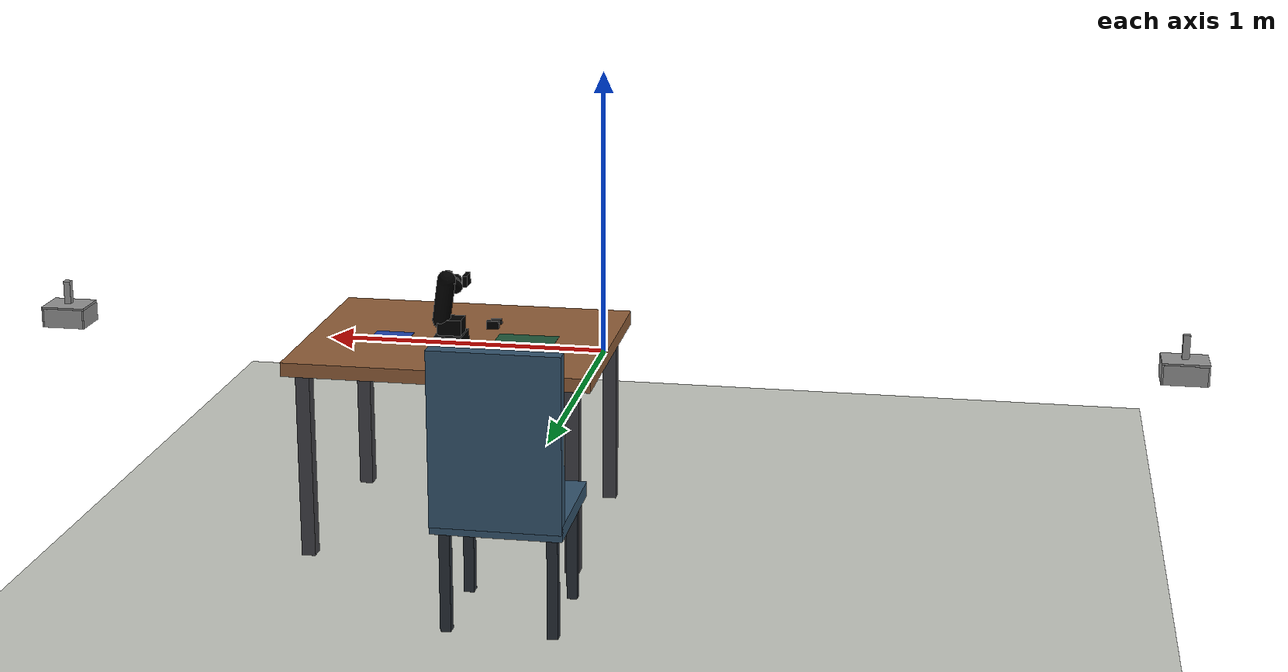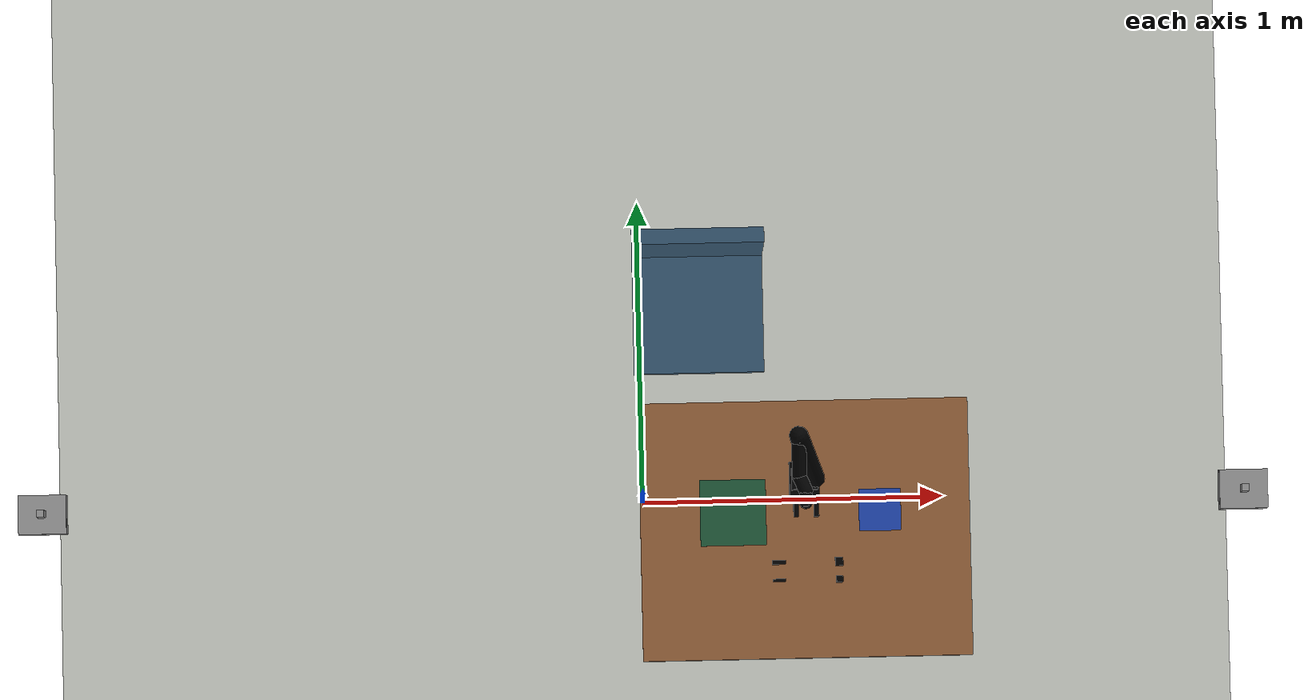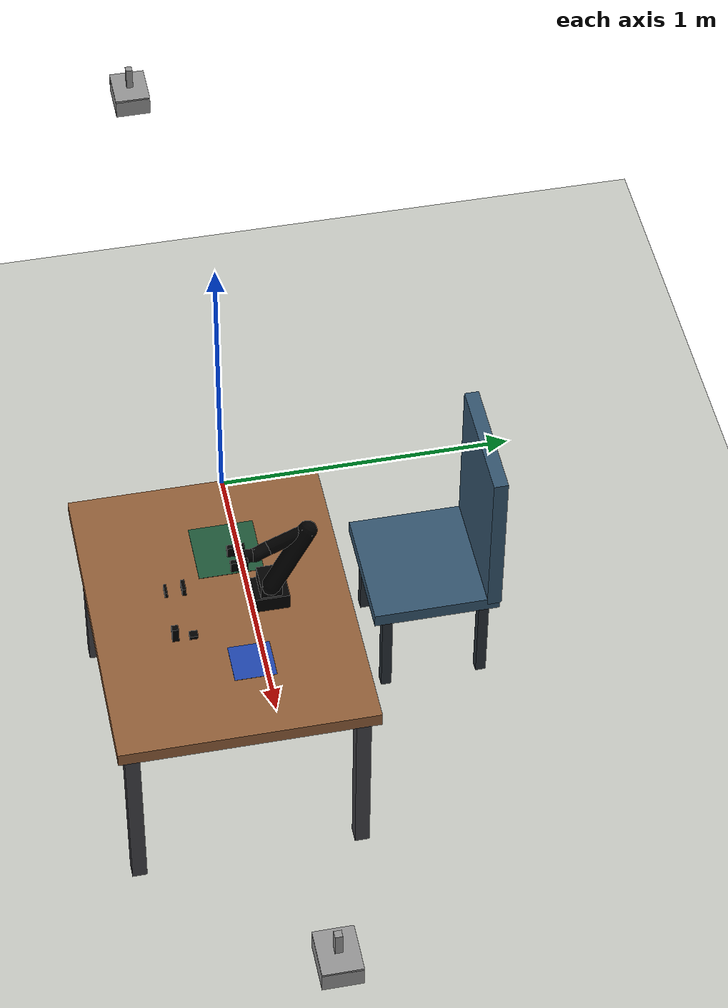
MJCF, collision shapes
<mujoco model="NexArm memory occlusion MVP">
  <include file="../../assets/robot/robot.xml"/>
  <compiler meshdir="../../assets/robot/meshes"/>
  <asset>
    <texture name="butter_tex" type="2d" file="../../assets/hope-dataset/meshes/eval/Butter.png"/>
    <texture name="popcorn_tex" type="2d" file="../../assets/hope-dataset/meshes/eval/Popcorn.png"/>
    <texture name="milk_tex" type="2d" file="../../assets/hope-dataset/meshes/eval/Milk.png"/>
    <texture name="tuna_tex" type="2d" file="../../assets/hope-dataset/meshes/eval/Tuna.png"/>
    <material name="butter_mat" texture="butter_tex"/>
    <material name="popcorn_mat" texture="popcorn_tex"/>
    <material name="milk_mat" texture="milk_tex"/>
    <material name="tuna_mat" texture="tuna_tex"/>
    <mesh name="butter_mesh" file="../../hope-dataset/meshes/eval/Butter.obj" scale="0.004 0.004 0.004"/>
    <mesh name="popcorn_mesh" file="../../hope-dataset/meshes/eval/Popcorn.obj" scale="0.0035 0.0035 0.0035"/>
    <mesh name="milk_mesh" file="../../hope-dataset/meshes/eval/Milk.obj" scale="0.003 0.003 0.003"/>
    <mesh name="tuna_mesh" file="../../hope-dataset/meshes/eval/Tuna.obj" scale="0.004 0.004 0.004"/>
  </asset>
  <visual>
    <headlight ambient="0.3 0.3 0.3" diffuse="0.4 0.4 0.4" specular="0.15 0.15 0.15"/>
  </visual>
  <worldbody>
    <geom name="floor" type="plane" pos="0 0 -0.75" size="2 2 0.1" rgba="0.78 0.79 0.76 1"/>
    <geom name="table_top" type="box" pos="0.54 -0.10 -0.025" size="0.55 0.43 0.025"
          rgba="0.57 0.37 0.22 1" friction="1 0.01 0.001"/>
    <geom type="box" pos="0.06 -0.48 -0.375" size="0.025 0.025 0.35" rgba="0.25 0.25 0.27 1"/>
    <geom type="box" pos="0.06 0.28 -0.375" size="0.025 0.025 0.35" rgba="0.25 0.25 0.27 1"/>
    <geom type="box" pos="1.02 -0.48 -0.375" size="0.025 0.025 0.35" rgba="0.25 0.25 0.27 1"/>
    <geom type="box" pos="1.02 0.28 -0.375" size="0.025 0.025 0.35" rgba="0.25 0.25 0.27 1"/>
    <geom name="chair_seat" type="box" pos="0.20 0.67 -0.35" size="0.22 0.22 0.025" rgba="0.2 0.33 0.43 1"/>
    <geom name="chair_back" type="box" pos="0.20 0.87 -0.05" size="0.22 0.025 0.30" rgba="0.2 0.33 0.43 1"/>
    <geom type="box" pos="0.02 0.50 -0.55" size="0.018 0.018 0.18" rgba="0.15 0.18 0.21 1"/>
    <geom type="box" pos="0.02 0.84 -0.55" size="0.018 0.018 0.18" rgba="0.15 0.18 0.21 1"/>
    <geom type="box" pos="0.38 0.50 -0.55" size="0.018 0.018 0.18" rgba="0.15 0.18 0.21 1"/>
    <geom type="box" pos="0.38 0.84 -0.55" size="0.018 0.018 0.18" rgba="0.15 0.18 0.21 1"/>
    <geom name="cover_drop_zone" type="box" pos="0.30 -0.04 0.0005" size="0.11 0.11 0.0005"
          rgba="0.12 0.34 0.22 1" contype="0" conaffinity="0"/>
    <geom name="target_drop_zone" type="box" pos="0.79 -0.04 0.0005" size="0.07 0.07 0.0005"
          rgba="0.12 0.27 0.68 1" contype="0" conaffinity="0"/>
    <camera name="overview" pos="0.54 -0.78 0.55" xyaxes="1 0 0 0 0.51865 0.85499" fovy="50"/>
    <light pos="0.2 -0.5 1.4" dir="0.2 0.3 -1" diffuse="0.8 0.8 0.8"/>
    <light pos="0.9 0.2 1.1" dir="-0.2 -0.2 -1" diffuse="0.35 0.35 0.35"/>

    <body name="Butter" pos="0.45 -0.27 0.010565">
      <freejoint name="Butter_joint"/>
      <geom name="Butter_visual" type="mesh" mesh="butter_mesh" material="butter_mat"
            quat="0.70710678 0.70710678 0 0" mass="0" contype="0" conaffinity="0"/>
      <geom name="Butter_collision" type="box" size="0.020660 0.004787 0.010565"
            mass="0.025" rgba="0 0 0 0" friction="1.2 0.01 0.001"/>
    </body>
    <body name="Popcorn" pos="0.45 -0.21 0.014870">
      <freejoint name="Popcorn_joint"/>
      <geom name="Popcorn_visual" type="mesh" mesh="popcorn_mesh" material="popcorn_mat"
            quat="0.70710678 0.70710678 0 0" mass="0" contype="0" conaffinity="0"/>
      <geom name="Popcorn_collision" type="box" size="0.022136 0.006693 0.014870"
            mass="0.025" rgba="0 0 0 0" friction="1.2 0.01 0.001"/>
    </body>
    <body name="Milk" pos="0.65 -0.27 0.028553">
      <freejoint name="Milk_joint"/>
      <geom name="Milk_visual" type="mesh" mesh="milk_mesh" material="milk_mat"
            quat="0.70710678 0.70710678 0 0" mass="0" contype="0" conaffinity="0"/>
      <geom name="Milk_collision" type="box" size="0.010823 0.010984 0.028553"
            mass="0.025" rgba="0 0 0 0" friction="1.2 0.01 0.001"/>
    </body>
    <body name="Tuna" pos="0.65 -0.21 0.006494">
      <freejoint name="Tuna_joint"/>
      <geom name="Tuna_visual" type="mesh" mesh="tuna_mesh" material="tuna_mat"
            quat="0.70710678 0.70710678 0 0" mass="0" contype="0" conaffinity="0"/>
      <geom name="Tuna_collision" type="box" size="0.013163 0.014144 0.006494"
            mass="0.025" rgba="0 0 0 0" friction="1.2 0.01 0.001"/>
    </body>

    <body name="cover_a" pos="-2 0 0.003">
      <freejoint name="cover_a_joint"/>
      <geom name="cover_a_top" type="box" pos="0 0 0.072" size="0.08 0.065 0.004"
            mass="0.014" rgba="0.58 0.58 0.58 1" friction="1 0.01 0.001"/>
      <geom name="cover_a_left" type="box" pos="-0.077 0 0.035" size="0.003 0.065 0.035"
            mass="0.0028" rgba="0.58 0.58 0.58 1"/>
      <geom name="cover_a_right" type="box" pos="0.077 0 0.035" size="0.003 0.065 0.035"
            mass="0.0028" rgba="0.58 0.58 0.58 1"/>
      <geom name="cover_a_front" type="box" pos="0 -0.062 0.035" size="0.074 0.003 0.035"
            mass="0.0028" rgba="0.58 0.58 0.58 1"/>
      <geom name="cover_a_back" type="box" pos="0 0.062 0.035" size="0.074 0.003 0.035"
            mass="0.0028" rgba="0.58 0.58 0.58 1"/>
      <geom name="cover_a_handle" type="box" pos="0 0 0.120" size="0.012 0.012 0.042"
            mass="0.0048" rgba="0.58 0.58 0.58 1" friction="1.4 0.01 0.001"/>
    </body>
    <body name="cover_b" pos="2 0 0.003">
      <freejoint name="cover_b_joint"/>
      <geom name="cover_b_top" type="box" pos="0 0 0.072" size="0.08 0.065 0.004"
            mass="0.014" rgba="0.58 0.58 0.58 1" friction="1 0.01 0.001"/>
      <geom name="cover_b_left" type="box" pos="-0.077 0 0.035" size="0.003 0.065 0.035"
            mass="0.0028" rgba="0.58 0.58 0.58 1"/>
      <geom name="cover_b_right" type="box" pos="0.077 0 0.035" size="0.003 0.065 0.035"
            mass="0.0028" rgba="0.58 0.58 0.58 1"/>
      <geom name="cover_b_front" type="box" pos="0 -0.062 0.035" size="0.074 0.003 0.035"
            mass="0.0028" rgba="0.58 0.58 0.58 1"/>
      <geom name="cover_b_back" type="box" pos="0 0.062 0.035" size="0.074 0.003 0.035"
            mass="0.0028" rgba="0.58 0.58 0.58 1"/>
      <geom name="cover_b_handle" type="box" pos="0 0 0.120" size="0.012 0.012 0.042"
            mass="0.0048" rgba="0.58 0.58 0.58 1" friction="1.4 0.01 0.001"/>
    </body>
  </worldbody>
</mujoco>

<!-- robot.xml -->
<mujoco model="NexArm-sim">
  <compiler angle="radian" meshdir="meshes" autolimits="true" />
  <option timestep="0.002" integrator="implicitfast" gravity="0 0 -9.81" />
  <default>
    <default class="arm_joint">
      <joint damping="0.2" frictionloss="0.1" armature="0.005" />
    </default>
    <!-- [MINIMAL SYSID END] -->
    <default class="arm_actuator">
      <position kp="100.0" kv="2.0" />
    </default>
    <default class="visual">
      <geom type="mesh" contype="0" conaffinity="0" group="2" />
    </default>
    <default class="collision">
      <geom contype="1" conaffinity="3" group="3" rgba="0 0 0 0" friction="1.1 0.01 0.001" />
    </default>
  </default>
  <asset>
    <mesh name="base_link" file="base_link.stl" scale="0.001 0.001 0.001" />
    <mesh name="link_1" file="link_1.stl" scale="0.001 0.001 0.001" />
    <mesh name="link_2" file="link_2.stl" scale="0.001 0.001 0.001" />
    <mesh name="link_3" file="link_3.stl" scale="0.001 0.001 0.001" />
    <mesh name="link_4" file="link_4.stl" scale="0.001 0.001 0.001" />
    <mesh name="link_5" file="link_5.stl" scale="0.001 0.001 0.001" />
    <mesh name="link_6_gripper_base" file="link_6_gripper_base.stl" scale="0.001 0.001 0.001" />
    <mesh name="link_6_pinion_gear" file="link_6_pinion_gear.stl" scale="0.001 0.001 0.001" />
    <mesh name="link_6_left_jaw" file="link_6_left_jaw.stl" scale="0.001 0.001 0.001" />
    <mesh name="link_6_right_jaw" file="link_6_right_jaw.stl" scale="0.001 0.001 0.001" />
    <mesh name="cam_mount" file="cam_mount.stl" scale="0.001 0.001 0.001" />
  </asset>
  <worldbody>
    <body name="base_link" pos="0 0 0" quat="1 0 0 0">
      <geom name="base_link_visual" type="mesh" mesh="base_link" class="visual" />
      <geom name="base_link_collision_0" class="collision" type="box" pos="0.53937 0.06397 0.030" size="0.050 0.060 0.030" />
      <inertial mass="0.786700972741" pos="0.539380271544 0.0638369908334 0.0185753932111" fullinertia="0.00139802033416 0.00144056236845 0.0018724205137 -4.47649731558e-07 4.8308012353e-09 -1.18756099678e-05" />
      <body name="link_1" pos="0 0 0" quat="1 0 0 0">
        <joint name="joint_1_base_to_link_1" class="arm_joint" pos="0.539369022999 0.0639727628473 0.049" type="hinge" axis="0 0 -1" limited="true" range="-2.35619449019 2.35619449019" />
        <geom name="link_1_visual" type="mesh" mesh="link_1" class="visual" />
        <geom name="link_1_collision_0" class="collision" type="box" pos="0.53937 0.06397 0.076" size="0.044 0.036 0.040" />
        <inertial mass="0.729809704164" pos="0.539368978002 0.0635116057815 0.071484812844" fullinertia="0.00051963807044 0.000637210660821 0.000641128073206 -1.55037780909e-06 -1.34409444286e-09 -5.03362157091e-06" />
        <body name="link_2" pos="0 0 0" quat="1 0 0 0">
          <joint name="joint_2_link_1_to_link_2" class="arm_joint" pos="0.574469022999 0.0639727628408 0.106445070665" type="hinge" axis="-1 0 0" limited="true" range="-2.09439510239 2.09439510239" />
          <geom name="link_2_visual" type="mesh" mesh="link_2" class="visual" />
          <geom name="link_2_collision_0" class="collision" type="capsule" fromto="0.57447 0.06397 0.10645 0.51944 0.19693 0.29168" size="0.032" />
          <inertial mass="0.499489573358" pos="0.540189023978 0.144420872296 0.188150680363" fullinertia="0.00223280503893 0.00128349391446 0.0011840260217 -6.38518145024e-12 -7.23148332327e-12 -0.00107951664549" />
          <body name="link_3" pos="0 0 0" quat="1 0 0 0">
            <joint name="joint_3_link_2_to_link_3" class="arm_joint" pos="0.519439024469 0.196934090904 0.291683736154" type="hinge" axis="-1 -5.02429586779e-14 2.89985268759e-27" limited="true" range="-2.35619449019 2.35619449019" />
            <geom name="link_3_visual" type="mesh" mesh="link_3" class="visual" />
            <geom name="link_3_collision_0" class="collision" type="capsule" fromto="0.51944 0.19693 0.29168 0.51912 0.06552 0.23041" size="0.024" />
            <inertial mass="0.502797979401" pos="0.538186644887 0.13328554092 0.262084919136" fullinertia="0.00148648515676 0.000325281319953 0.00124573640081 -1.71226057479e-06 -6.54549700107e-07 -0.000548157407294" />
            <body name="link_4" pos="0 0 0" quat="1 0 0 0">
              <joint name="joint_4_link_3_to_link_4" class="arm_joint" pos="0.519118832515 0.0655199672431 0.230406053572" type="hinge" axis="1 0 0" limited="true" range="-1.74532925199 1.74532925199" />
              <geom name="link_4_visual" type="mesh" mesh="link_4" class="visual" />
              <geom name="link_4_collision_0" class="collision" type="capsule" fromto="0.51912 0.06552 0.23041 0.53937 0.01829 0.23042" size="0.024" />
              <inertial mass="0.115068953526" pos="0.539217677946 0.0412813965935 0.225809887954" fullinertia="3.83442340902e-05 3.79383592642e-05 5.09344113524e-05 3.05302531805e-07 -1.84760289414e-08 -2.89291259098e-06" />
              <body name="link_5" pos="0 0 0" quat="1 0 0 0">
                <joint name="joint_5_link_4_to_link_5" class="arm_joint" pos="0.539368637629 0.0182856141095 0.23042272303" type="hinge" axis="0 -1 0" limited="true" range="-3.14159265359 3.14159265359" />
                <geom name="link_5_visual" type="mesh" mesh="link_5" class="visual" />
                <geom name="link_5_collision_0" class="collision" type="capsule" fromto="0.53937 0.01829 0.23042 0.53937 -0.02102 0.23060" size="0.022" />
                <inertial mass="0.0877645173099" pos="0.539308600819 0.00213395624175 0.226224940969" fullinertia="1.61873455873e-05 1.81853478741e-05 1.80887992735e-05 1.9977723024e-08 -7.53848706523e-08 -3.82108689215e-07" />
                <body name="link_6_gripper_base" pos="0 0 0" quat="1 0 0 0">
                  <geom name="link_6_gripper_base_visual" type="mesh" mesh="link_6_gripper_base" class="visual" />
                  <geom name="link_6_gripper_base_collision_0" class="collision" type="box" pos="0.53937 -0.0235 0.2255" size="0.010 0.012 0.022" />
                  <site name="grasp_site" pos="0.539369 -0.039412 0.230434" size="0.008" rgba="0 1 0 0" />
                  <site name="gripper_frame" pos="0.539 -0.09 0.230" size="0.005" rgba="0.1 0.8 0.1 0" />
                  <inertial mass="0.0774928302785" pos="0.539368566486 -0.0210206927704 0.230601823149" fullinertia="8.95253759014e-06 9.85333441232e-05 9.25169280579e-05 1.88914933474e-11 5.42428324479e-15 7.9007785621e-08" />
                  <body name="link_6_pinion_gear" pos="0 0 0" quat="1 0 0 0">
                    <joint name="gripper_pinion_joint" pos="0.539368645759 -0.0216536266505 0.230436163963" type="hinge" axis="0 -0.999999998851 -4.79312977157e-05" />
                    <geom name="link_6_pinion_gear_visual" type="mesh" mesh="link_6_pinion_gear" class="visual" />
                    <inertial mass="0.00813153456749" pos="0.539368645877 -0.0196832596798 0.230436258524" fullinertia="1.98908631521e-07 3.71227873183e-07 1.98908631397e-07 2.68340905052e-17 -2.79953837889e-16 8.25952531924e-12" />
                  </body>
                  <body name="link_6_left_jaw" pos="0 0 0" quat="1 0 0 0">
                    <joint name="left_jaw_slide_joint" pos="0.539368648301 -0.0279461316442 0.230435863088" type="slide" axis="1 0 0" limited="true" range="0 0.0255" />
                    <geom name="link_6_left_jaw_visual" type="mesh" mesh="link_6_left_jaw" class="visual" />
                    <geom name="link_6_left_jaw_collision_0" class="collision" type="box" pos="0.50559 -0.03991 0.22931" size="0.008 0.029 0.020" friction="2.2 0.01 0.001" />
                    <inertial mass="0.111422606046" pos="0.504003187095 -0.0394122365348 0.229771944907" fullinertia="2.28042352486e-05 1.43750650678e-05 2.25552586022e-05 1.93422836022e-06 7.00590085088e-07 1.37928154779e-06" />
                  </body>
                  <body name="link_6_right_jaw" pos="0 0 0" quat="1 0 0 0">
                    <joint name="right_jaw_slide_joint" pos="0.539368644619 -0.0279461316442 0.230435863088" type="slide" axis="1 0 0" limited="true" range="-0.0255 0" />
                    <geom name="link_6_right_jaw_visual" type="mesh" mesh="link_6_right_jaw" class="visual" />
                    <geom name="link_6_right_jaw_collision_0" class="collision" type="box" pos="0.57314 -0.03991 0.23155" size="0.008 0.029 0.020" friction="2.2 0.01 0.001" />
                    <inertial mass="0.111422606059" pos="0.574734109829 -0.0394122993228 0.231095115243" fullinertia="2.28047609263e-05 1.43758557067e-05 2.25549938879e-05 -1.93429494168e-06 7.01727577012e-07 -1.37562632826e-06" />
                  </body>
                </body>
                <body name="cam_mount" pos="0 0 0" quat="1 0 0 0">
                  <geom name="cam_mount_visual" type="mesh" mesh="cam_mount" class="visual" />
                  <camera name="wrist" mode="fixed" pos="0.539 0.015 0.295" xyaxes="0 -0.485643 0.874157 1 0 0" fovy="70" />
                  <inertial mass="0.128723206864" pos="0.53898118894 0.0126462358897 0.266652488245" fullinertia="1.454636486e-05 6.65139880049e-05 6.72526841822e-05 -1.94818185207e-07 1.76421275768e-08 8.29660447764e-07" />
                </body>
              </body>
            </body>
          </body>
        </body>
      </body>
    </body>
  </worldbody>
  <equality>
    <joint name="gripper_jaws_opposed_1_to_1" joint1="right_jaw_slide_joint" joint2="left_jaw_slide_joint" polycoef="0 -1 0 0 0" solref="0.002 1" solimp="0.99 0.999 0.0005 0.5 2" />
    <joint name="gripper_pinion_to_right_jaw" joint1="gripper_pinion_joint" joint2="right_jaw_slide_joint" polycoef="0 246.399423811 0 0 0" solref="0.002 1" solimp="0.99 0.999 0.0005 0.5 2" />
  </equality>
  <contact>
    <exclude name="exclude_base_link_1" body1="base_link" body2="link_1" />
  </contact>
  <actuator>
    <!-- Physical stall-torque ceilings: HX-65HM on J1, HX-30HM on J2-J4,
         and HX-12H on J5. Derate to measured effective operating limits before
         collecting final sim-to-real data. -->
    <position name="joint_1_base_to_link_1_control" class="arm_actuator" joint="joint_1_base_to_link_1" ctrllimited="true" ctrlrange="-2.35619449019 2.35619449019" forcelimited="true" forcerange="-6.37 6.37" />
    <position name="joint_2_link_1_to_link_2_control" class="arm_actuator" joint="joint_2_link_1_to_link_2" ctrllimited="true" ctrlrange="-2.09439510239 2.09439510239" forcelimited="true" forcerange="-2.94 2.94" />
    <position name="joint_3_link_2_to_link_3_control" class="arm_actuator" joint="joint_3_link_2_to_link_3" ctrllimited="true" ctrlrange="-2.35619449019 2.35619449019" forcelimited="true" forcerange="-2.94 2.94" />
    <position name="joint_4_link_3_to_link_4_control" class="arm_actuator" joint="joint_4_link_3_to_link_4" ctrllimited="true" ctrlrange="-1.74532925199 1.74532925199" forcelimited="true" forcerange="-2.94 2.94" />
    <position name="joint_5_link_4_to_link_5_control" class="arm_actuator" joint="joint_5_link_4_to_link_5" ctrllimited="true" ctrlrange="-3.14159265359 3.14159265359" forcelimited="true" forcerange="-1.18 1.18" />
    <!-- [CALIBRATE YOURSELF / MINIMAL]
         Verify servo-command -> jaw-gap mapping with a few physical measurements.
         kp/kv are effective simulation gains; keep nominal/randomize unless needed. -->
    <position name="gripper_control" joint="right_jaw_slide_joint" ctrllimited="true" ctrlrange="-0.0255 0" kp="200.0" kv="4.0" forcelimited="true" forcerange="-581.5 581.5" />
  </actuator>
</mujoco>
